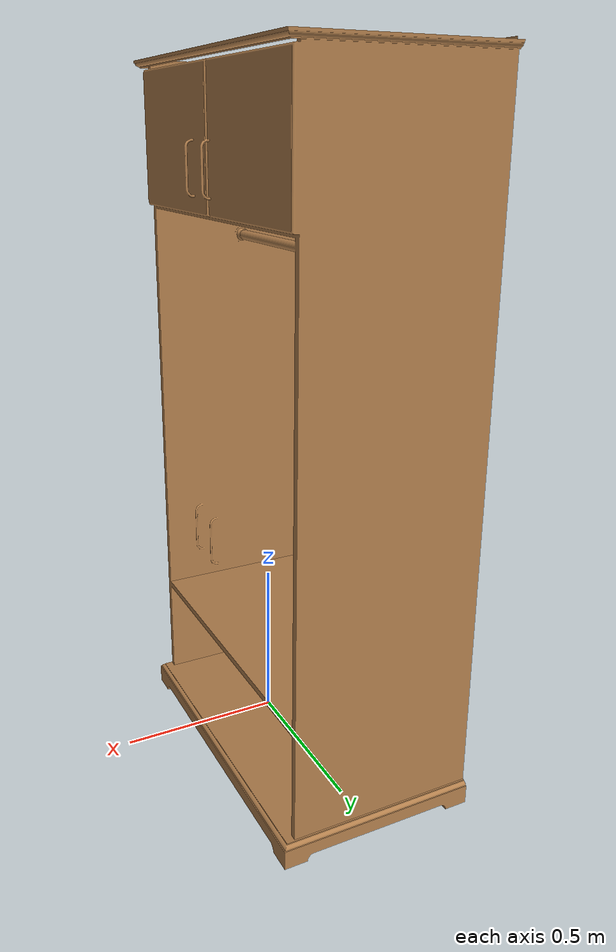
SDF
<sdf version='1.6'>
  <model name='wardrobe'>
    <link name='base_link'>
      <pose frame=''>0 0 0 0 -0 0</pose>
      <inertial>
        <pose frame=''>0 1.1 0 0 -0 0</pose>
        <mass>20</mass>
        <inertia>
          <ixx>7.5306636544</ixx>
          <ixy>0</ixy>
          <ixz>0</ixz>
          <iyy>2.5306656544</iyy>
          <iyz>0</iyz>
          <izz>8.33333</izz>
        </inertia>
      </inertial>
      <visual name='base_link_collision'>
        <pose frame=''>0.0 0.2 0.0 0.0 0.0 1.57</pose>
        <geometry>
          <mesh>
            <scale>1 1 1</scale>
            <uri>file://isr-testbed/wardrobe/3d-model.dae</uri>
          </mesh>
        </geometry>
        <material>
          <script>
            <uri>file://media/materials/scripts/gazebo.material</uri>
            <name>Gazebo/WoodFloor</name>
          </script>
        </material>
      </visual>
      <collision name='base_link_visual'>
        <pose frame=''>0.0 0.2 1.0 0.0 0.0 1.57</pose>
        <geometry>
          <box>
            <size>1.0 0.72 2.0</size>
          </box>
        </geometry>
      </collision>
    </link>
    <static>1</static>
  </model>
</sdf>
